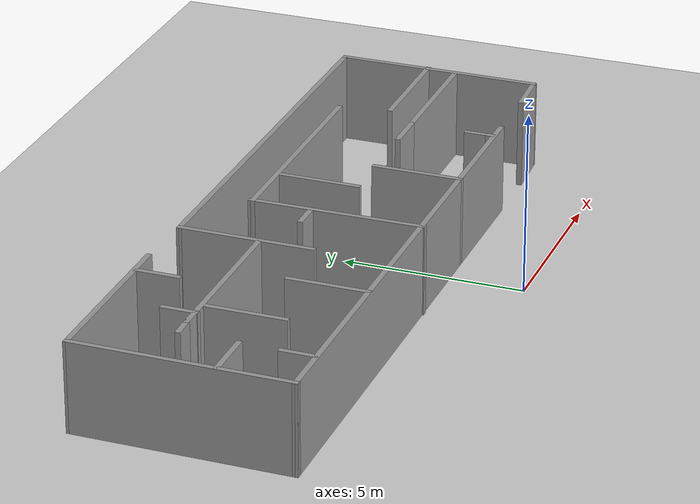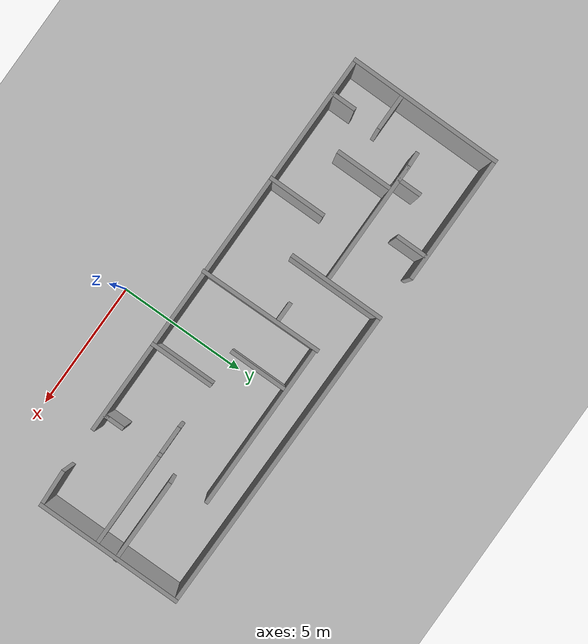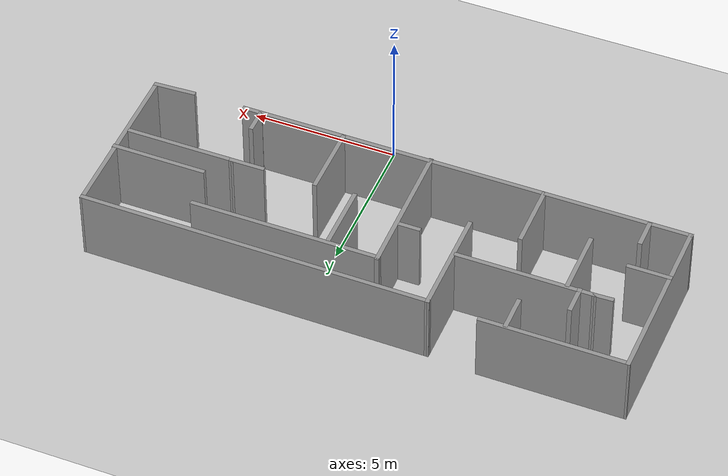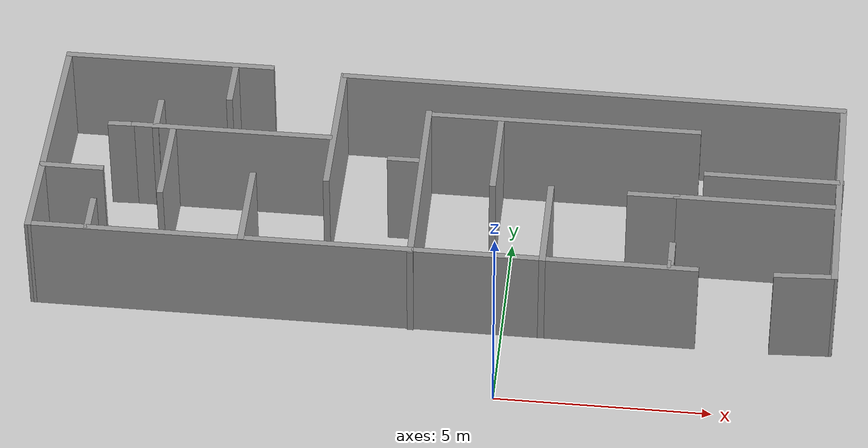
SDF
<sdf version='1.7'>
  <world name='default'>
    <light name='sun' type='directional'>
      <cast_shadows>1</cast_shadows>
      <pose>0 0 10 0 -0 0</pose>
      <diffuse>0.8 0.8 0.8 1</diffuse>
      <specular>0.2 0.2 0.2 1</specular>
      <attenuation>
        <range>1000</range>
        <constant>0.9</constant>
        <linear>0.01</linear>
        <quadratic>0.001</quadratic>
      </attenuation>
      <direction>-0.5 0.1 -0.9</direction>
      <spot>
        <inner_angle>0</inner_angle>
        <outer_angle>0</outer_angle>
        <falloff>0</falloff>
      </spot>
    </light>
    <model name='ground_plane'>
      <static>1</static>
      <link name='link'>
        <collision name='collision'>
          <geometry>
            <plane>
              <normal>0 0 1</normal>
              <size>100 100</size>
            </plane>
          </geometry>
          <surface>
            <friction>
              <ode>
                <mu>100</mu>
                <mu2>50</mu2>
              </ode>
              <torsional>
                <ode/>
              </torsional>
            </friction>
            <contact>
              <ode/>
            </contact>
            <bounce/>
          </surface>
          <max_contacts>10</max_contacts>
        </collision>
        <visual name='visual'>
          <cast_shadows>0</cast_shadows>
          <geometry>
            <plane>
              <normal>0 0 1</normal>
              <size>100 100</size>
            </plane>
          </geometry>
          <material>
            <script>
              <uri>file://media/materials/scripts/gazebo.material</uri>
              <name>Gazebo/Grey</name>
            </script>
          </material>
        </visual>
        <self_collide>0</self_collide>
        <enable_wind>0</enable_wind>
        <kinematic>0</kinematic>
      </link>
    </model>
    <gravity>0 0 -9.8</gravity>
    <magnetic_field>6e-06 2.3e-05 -4.2e-05</magnetic_field>
    <atmosphere type='adiabatic'/>
    <physics type='ode'>
      <max_step_size>0.001</max_step_size>
      <real_time_factor>1</real_time_factor>
      <real_time_update_rate>1000</real_time_update_rate>
    </physics>
    <scene>
      <ambient>0.4 0.4 0.4 1</ambient>
      <background>0.7 0.7 0.7 1</background>
      <shadows>1</shadows>
    </scene>
    <wind/>
    <spherical_coordinates>
      <surface_model>EARTH_WGS84</surface_model>
      <latitude_deg>0</latitude_deg>
      <longitude_deg>0</longitude_deg>
      <elevation>0</elevation>
      <heading_deg>0</heading_deg>
    </spherical_coordinates>
    <model name='migong'>
      <pose>-1.67735 4.0197 0 0 -0 0</pose>
      <link name='Wall_12'>
        <collision name='Wall_12_Collision'>
          <geometry>
            <box>
              <size>4.81962 0.15 2.5</size>
            </box>
          </geometry>
          <pose>0 0 1.25 0 -0 0</pose>
          <max_contacts>10</max_contacts>
          <surface>
            <contact>
              <ode/>
            </contact>
            <bounce/>
            <friction>
              <torsional>
                <ode/>
              </torsional>
              <ode/>
            </friction>
          </surface>
        </collision>
        <visual name='Wall_12_Visual'>
          <pose>0 0 1.25 0 -0 0</pose>
          <geometry>
            <box>
              <size>4.81962 0.15 2.5</size>
            </box>
          </geometry>
          <material>
            <script>
              <uri>file://media/materials/scripts/gazebo.material</uri>
              <name>Gazebo/Grey</name>
            </script>
            <ambient>1 1 1 1</ambient>
          </material>
          <meta>
            <layer>0</layer>
          </meta>
        </visual>
        <pose>-0.457971 0.404092 0 0 -0 1.5807</pose>
        <self_collide>0</self_collide>
        <enable_wind>0</enable_wind>
        <kinematic>0</kinematic>
      </link>
      <link name='Wall_13'>
        <collision name='Wall_13_Collision'>
          <geometry>
            <box>
              <size>6.5 0.15 2.5</size>
            </box>
          </geometry>
          <pose>0 0 1.25 0 -0 0</pose>
          <max_contacts>10</max_contacts>
          <surface>
            <contact>
              <ode/>
            </contact>
            <bounce/>
            <friction>
              <torsional>
                <ode/>
              </torsional>
              <ode/>
            </friction>
          </surface>
        </collision>
        <visual name='Wall_13_Visual'>
          <pose>0 0 1.25 0 -0 0</pose>
          <geometry>
            <box>
              <size>6.5 0.15 2.5</size>
            </box>
          </geometry>
          <material>
            <script>
              <uri>file://media/materials/scripts/gazebo.material</uri>
              <name>Gazebo/Grey</name>
            </script>
            <ambient>1 1 1 1</ambient>
          </material>
          <meta>
            <layer>0</layer>
          </meta>
        </visual>
        <pose>2.6939 2.69253 0 0 -0 0</pose>
        <self_collide>0</self_collide>
        <enable_wind>0</enable_wind>
        <kinematic>0</kinematic>
      </link>
      <link name='Wall_15'>
        <collision name='Wall_15_Collision'>
          <geometry>
            <box>
              <size>2.5 0.15 2.5</size>
            </box>
          </geometry>
          <pose>0 0 1.25 0 -0 0</pose>
          <max_contacts>10</max_contacts>
          <surface>
            <contact>
              <ode/>
            </contact>
            <bounce/>
            <friction>
              <torsional>
                <ode/>
              </torsional>
              <ode/>
            </friction>
          </surface>
        </collision>
        <visual name='Wall_15_Visual'>
          <pose>0 0 1.25 0 -0 0</pose>
          <geometry>
            <box>
              <size>2.5 0.15 2.5</size>
            </box>
          </geometry>
          <material>
            <script>
              <uri>file://media/materials/scripts/gazebo.material</uri>
              <name>Gazebo/Grey</name>
            </script>
            <ambient>1 1 1 1</ambient>
          </material>
          <meta>
            <layer>0</layer>
          </meta>
        </visual>
        <pose>2.59053 -0.720425 0 0 -0 1.5708</pose>
        <self_collide>0</self_collide>
        <enable_wind>0</enable_wind>
        <kinematic>0</kinematic>
      </link>
      <link name='Wall_29'>
        <collision name='Wall_29_Collision'>
          <geometry>
            <box>
              <size>5.98978 0.15 2.5</size>
            </box>
          </geometry>
          <pose>0 0 1.25 0 -0 0</pose>
          <max_contacts>10</max_contacts>
          <surface>
            <contact>
              <ode/>
            </contact>
            <bounce/>
            <friction>
              <torsional>
                <ode/>
              </torsional>
              <ode/>
            </friction>
          </surface>
        </collision>
        <visual name='Wall_29_Visual'>
          <pose>0 0 1.25 0 -0 0</pose>
          <geometry>
            <box>
              <size>5.98978 0.15 2.5</size>
            </box>
          </geometry>
          <material>
            <script>
              <uri>file://media/materials/scripts/gazebo.material</uri>
              <name>Gazebo/Grey</name>
            </script>
            <ambient>1 1 1 1</ambient>
          </material>
          <meta>
            <layer>0</layer>
          </meta>
        </visual>
        <pose>-9.24712 1.02441 0 0 -0 -1.57682</pose>
        <self_collide>0</self_collide>
        <enable_wind>0</enable_wind>
        <kinematic>0</kinematic>
      </link>
      <link name='Wall_33'>
        <collision name='Wall_33_Collision'>
          <geometry>
            <box>
              <size>3.75 0.15 2.5</size>
            </box>
          </geometry>
          <pose>0 0 1.25 0 -0 0</pose>
          <max_contacts>10</max_contacts>
          <surface>
            <contact>
              <ode/>
            </contact>
            <bounce/>
            <friction>
              <torsional>
                <ode/>
              </torsional>
              <ode/>
            </friction>
          </surface>
        </collision>
        <visual name='Wall_33_Visual'>
          <pose>0 0 1.25 0 -0 0</pose>
          <geometry>
            <box>
              <size>3.75 0.15 2.5</size>
            </box>
          </geometry>
          <material>
            <script>
              <uri>file://media/materials/scripts/gazebo.material</uri>
              <name>Gazebo/Grey</name>
            </script>
            <ambient>1 1 1 1</ambient>
          </material>
          <meta>
            <layer>0</layer>
          </meta>
        </visual>
        <pose>-2.61592 2.03871 0 0 -0 -1.5708</pose>
        <self_collide>0</self_collide>
        <enable_wind>0</enable_wind>
        <kinematic>0</kinematic>
      </link>
      <link name='Wall_35'>
        <collision name='Wall_35_Collision'>
          <geometry>
            <box>
              <size>4.75 0.15 2.5</size>
            </box>
          </geometry>
          <pose>0 0 1.25 0 -0 0</pose>
          <max_contacts>10</max_contacts>
          <surface>
            <contact>
              <ode/>
            </contact>
            <bounce/>
            <friction>
              <torsional>
                <ode/>
              </torsional>
              <ode/>
            </friction>
          </surface>
        </collision>
        <visual name='Wall_35_Visual'>
          <pose>0 0 1.25 0 -0 0</pose>
          <geometry>
            <box>
              <size>4.75 0.15 2.5</size>
            </box>
          </geometry>
          <material>
            <script>
              <uri>file://media/materials/scripts/gazebo.material</uri>
              <name>Gazebo/Grey</name>
            </script>
            <ambient>1 1 1 1</ambient>
          </material>
          <meta>
            <layer>0</layer>
          </meta>
        </visual>
        <pose>-5.02146 1.65763 0 0 -0 3.14159</pose>
        <self_collide>0</self_collide>
        <enable_wind>0</enable_wind>
        <kinematic>0</kinematic>
      </link>
      <link name='Wall_38'>
        <collision name='Wall_38_Collision'>
          <geometry>
            <box>
              <size>2.25 0.15 2.5</size>
            </box>
          </geometry>
          <pose>0 0 1.25 0 -0 0</pose>
          <max_contacts>10</max_contacts>
          <surface>
            <contact>
              <ode/>
            </contact>
            <bounce/>
            <friction>
              <torsional>
                <ode/>
              </torsional>
              <ode/>
            </friction>
          </surface>
        </collision>
        <visual name='Wall_38_Visual'>
          <pose>0 0 1.25 0 -0 0</pose>
          <geometry>
            <box>
              <size>2.25 0.15 2.5</size>
            </box>
          </geometry>
          <material>
            <script>
              <uri>file://media/materials/scripts/gazebo.material</uri>
              <name>Gazebo/Grey</name>
            </script>
            <ambient>1 1 1 1</ambient>
          </material>
          <meta>
            <layer>0</layer>
          </meta>
        </visual>
        <pose>-4.33968 -0.8347 0 0 -0 -1.5708</pose>
        <self_collide>0</self_collide>
        <enable_wind>0</enable_wind>
        <kinematic>0</kinematic>
      </link>
      <link name='Wall_40'>
        <collision name='Wall_40_Collision'>
          <geometry>
            <box>
              <size>5.75 0.15 2.5</size>
            </box>
          </geometry>
          <pose>0 0 1.25 0 -0 0</pose>
          <max_contacts>10</max_contacts>
          <surface>
            <contact>
              <ode/>
            </contact>
            <bounce/>
            <friction>
              <torsional>
                <ode/>
              </torsional>
              <ode/>
            </friction>
          </surface>
        </collision>
        <visual name='Wall_40_Visual'>
          <pose>0 0 1.25 0 -0 0</pose>
          <geometry>
            <box>
              <size>5.75 0.15 2.5</size>
            </box>
          </geometry>
          <material>
            <script>
              <uri>file://media/materials/scripts/gazebo.material</uri>
              <name>Gazebo/Grey</name>
            </script>
            <ambient>1 1 1 1</ambient>
          </material>
          <meta>
            <layer>0</layer>
          </meta>
        </visual>
        <pose>9.23932 0.968356 0 0 -0 -1.5708</pose>
        <self_collide>0</self_collide>
        <enable_wind>0</enable_wind>
        <kinematic>0</kinematic>
      </link>
      <link name='Wall_42'>
        <collision name='Wall_42_Collision'>
          <geometry>
            <box>
              <size>5 0.15 2.5</size>
            </box>
          </geometry>
          <pose>0 0 1.25 0 -0 0</pose>
          <max_contacts>10</max_contacts>
          <surface>
            <contact>
              <ode/>
            </contact>
            <bounce/>
            <friction>
              <torsional>
                <ode/>
              </torsional>
              <ode/>
            </friction>
          </surface>
        </collision>
        <visual name='Wall_42_Visual'>
          <pose>0 0 1.25 0 -0 0</pose>
          <geometry>
            <box>
              <size>5 0.15 2.5</size>
            </box>
          </geometry>
          <material>
            <script>
              <uri>file://media/materials/scripts/gazebo.material</uri>
              <name>Gazebo/Grey</name>
            </script>
            <ambient>1 1 1 1</ambient>
          </material>
          <meta>
            <layer>0</layer>
          </meta>
        </visual>
        <pose>-6.80453 3.94425 0 0 -0 0</pose>
        <self_collide>0</self_collide>
        <enable_wind>0</enable_wind>
        <kinematic>0</kinematic>
      </link>
      <link name='Wall_44'>
        <collision name='Wall_44_Collision'>
          <geometry>
            <box>
              <size>12.0055 0.15 2.5</size>
            </box>
          </geometry>
          <pose>0 0 1.25 0 -0 0</pose>
          <max_contacts>10</max_contacts>
          <surface>
            <contact>
              <ode/>
            </contact>
            <bounce/>
            <friction>
              <torsional>
                <ode/>
              </torsional>
              <ode/>
            </friction>
          </surface>
        </collision>
        <visual name='Wall_44_Visual'>
          <pose>0 0 1.25 0 -0 0</pose>
          <geometry>
            <box>
              <size>12.0055 0.15 2.5</size>
            </box>
          </geometry>
          <material>
            <script>
              <uri>file://media/materials/scripts/gazebo.material</uri>
              <name>Gazebo/Grey</name>
            </script>
            <ambient>1 1 1 1</ambient>
          </material>
          <meta>
            <layer>0</layer>
          </meta>
        </visual>
        <pose>3.3117 3.80354 0 0 -0 -0.005935</pose>
        <self_collide>0</self_collide>
        <enable_wind>0</enable_wind>
        <kinematic>0</kinematic>
      </link>
      <link name='Wall_46'>
        <collision name='Wall_46_Collision'>
          <geometry>
            <box>
              <size>3.75 0.15 2.5</size>
            </box>
          </geometry>
          <pose>0 0 1.25 0 -0 0</pose>
          <max_contacts>10</max_contacts>
          <surface>
            <contact>
              <ode/>
            </contact>
            <bounce/>
            <friction>
              <torsional>
                <ode/>
              </torsional>
              <ode/>
            </friction>
          </surface>
        </collision>
        <visual name='Wall_46_Visual'>
          <pose>0 0 1.25 0 -0 0</pose>
          <geometry>
            <box>
              <size>3.75 0.15 2.5</size>
            </box>
          </geometry>
          <material>
            <script>
              <uri>file://media/materials/scripts/gazebo.material</uri>
              <name>Gazebo/Grey</name>
            </script>
            <ambient>1 1 1 1</ambient>
          </material>
          <meta>
            <layer>0</layer>
          </meta>
        </visual>
        <pose>7.31037 0.461552 0 0 -0 0</pose>
        <self_collide>0</self_collide>
        <enable_wind>0</enable_wind>
        <kinematic>0</kinematic>
      </link>
      <link name='Wall_53'>
        <collision name='Wall_53_Collision'>
          <geometry>
            <box>
              <size>1.21986 0.15 2.5</size>
            </box>
          </geometry>
          <pose>0 0 1.25 0 -0 0</pose>
          <max_contacts>10</max_contacts>
          <surface>
            <contact>
              <ode/>
            </contact>
            <bounce/>
            <friction>
              <torsional>
                <ode/>
              </torsional>
              <ode/>
            </friction>
          </surface>
        </collision>
        <visual name='Wall_53_Visual'>
          <pose>0 0 1.25 0 -0 0</pose>
          <geometry>
            <box>
              <size>1.21986 0.15 2.5</size>
            </box>
          </geometry>
          <material>
            <script>
              <uri>file://media/materials/scripts/gazebo.material</uri>
              <name>Gazebo/Grey</name>
            </script>
            <ambient>1 1 1 1</ambient>
          </material>
          <meta>
            <layer>0</layer>
          </meta>
        </visual>
        <pose>4.97545 0.458063 0 0 -0 0.006522</pose>
        <self_collide>0</self_collide>
        <enable_wind>0</enable_wind>
        <kinematic>0</kinematic>
      </link>
      <link name='Wall_56'>
        <collision name='Wall_56_Collision'>
          <geometry>
            <box>
              <size>1.45559 0.15 2.5</size>
            </box>
          </geometry>
          <pose>0 0 1.25 0 -0 0</pose>
          <max_contacts>10</max_contacts>
          <surface>
            <contact>
              <ode/>
            </contact>
            <bounce/>
            <friction>
              <torsional>
                <ode/>
              </torsional>
              <ode/>
            </friction>
          </surface>
        </collision>
        <visual name='Wall_56_Visual'>
          <pose>0 0 1.25 0 -0 0</pose>
          <geometry>
            <box>
              <size>1.45559 0.15 2.5</size>
            </box>
          </geometry>
          <material>
            <script>
              <uri>file://media/materials/scripts/gazebo.material</uri>
              <name>Gazebo/Grey</name>
            </script>
            <ambient>1 1 1 1</ambient>
          </material>
          <meta>
            <layer>0</layer>
          </meta>
        </visual>
        <pose>8.58731 -1.86353 0 0 -0 0.048872</pose>
        <self_collide>0</self_collide>
        <enable_wind>0</enable_wind>
        <kinematic>0</kinematic>
      </link>
      <link name='Wall_59'>
        <collision name='Wall_59_Collision'>
          <geometry>
            <box>
              <size>0.75 0.15 2.5</size>
            </box>
          </geometry>
          <pose>0 0 1.25 0 -0 0</pose>
          <max_contacts>10</max_contacts>
          <surface>
            <contact>
              <ode/>
            </contact>
            <bounce/>
            <friction>
              <torsional>
                <ode/>
              </torsional>
              <ode/>
            </friction>
          </surface>
        </collision>
        <visual name='Wall_59_Visual'>
          <pose>0 0 1.25 0 -0 0</pose>
          <geometry>
            <box>
              <size>0.75 0.15 2.5</size>
            </box>
          </geometry>
          <material>
            <script>
              <uri>file://media/materials/scripts/gazebo.material</uri>
              <name>Gazebo/Grey</name>
            </script>
            <ambient>1 1 1 1</ambient>
          </material>
          <meta>
            <layer>0</layer>
          </meta>
        </visual>
        <pose>5.51037 -1.43845 0 0 -0 -1.5708</pose>
        <self_collide>0</self_collide>
        <enable_wind>0</enable_wind>
        <kinematic>0</kinematic>
      </link>
      <link name='Wall_60'>
        <collision name='Wall_60_Collision'>
          <geometry>
            <box>
              <size>0.25 0.15 2.5</size>
            </box>
          </geometry>
          <pose>0 0 1.25 0 -0 0</pose>
          <max_contacts>10</max_contacts>
          <surface>
            <contact>
              <ode/>
            </contact>
            <bounce/>
            <friction>
              <torsional>
                <ode/>
              </torsional>
              <ode/>
            </friction>
          </surface>
        </collision>
        <visual name='Wall_60_Visual'>
          <pose>0 0 1.25 0 -0 0</pose>
          <geometry>
            <box>
              <size>0.25 0.15 2.5</size>
            </box>
          </geometry>
          <material>
            <script>
              <uri>file://media/materials/scripts/gazebo.material</uri>
              <name>Gazebo/Grey</name>
            </script>
            <ambient>1 1 1 1</ambient>
          </material>
          <meta>
            <layer>0</layer>
          </meta>
        </visual>
        <pose>5.51037 -1.78845 0 0 -0 -1.5708</pose>
        <self_collide>0</self_collide>
        <enable_wind>0</enable_wind>
        <kinematic>0</kinematic>
      </link>
      <link name='Wall_68'>
        <collision name='Wall_68_Collision'>
          <geometry>
            <box>
              <size>2.25 0.15 2.5</size>
            </box>
          </geometry>
          <pose>0 0 1.25 0 -0 0</pose>
          <max_contacts>10</max_contacts>
          <surface>
            <contact>
              <ode/>
            </contact>
            <bounce/>
            <friction>
              <torsional>
                <ode/>
              </torsional>
              <ode/>
            </friction>
          </surface>
        </collision>
        <visual name='Wall_68_Visual'>
          <pose>0 0 1.25 0 -0 0</pose>
          <geometry>
            <box>
              <size>2.25 0.15 2.5</size>
            </box>
          </geometry>
          <material>
            <script>
              <uri>file://media/materials/scripts/gazebo.material</uri>
              <name>Gazebo/Grey</name>
            </script>
            <ambient>1 1 1 1</ambient>
          </material>
          <meta>
            <layer>0</layer>
          </meta>
        </visual>
        <pose>1.24053 1.50457 0 0 -0 1.5708</pose>
        <self_collide>0</self_collide>
        <enable_wind>0</enable_wind>
        <kinematic>0</kinematic>
      </link>
      <link name='Wall_71'>
        <collision name='Wall_71_Collision'>
          <geometry>
            <box>
              <size>0.75 0.15 2.5</size>
            </box>
          </geometry>
          <pose>0 0 1.25 0 -0 0</pose>
          <max_contacts>10</max_contacts>
          <surface>
            <contact>
              <ode/>
            </contact>
            <bounce/>
            <friction>
              <torsional>
                <ode/>
              </torsional>
              <ode/>
            </friction>
          </surface>
        </collision>
        <visual name='Wall_71_Visual'>
          <pose>0 0 1.25 0 -0 0</pose>
          <geometry>
            <box>
              <size>0.75 0.15 2.5</size>
            </box>
          </geometry>
          <material>
            <script>
              <uri>file://media/materials/scripts/gazebo.material</uri>
              <name>Gazebo/Grey</name>
            </script>
            <ambient>1 1 1 1</ambient>
          </material>
          <meta>
            <layer>0</layer>
          </meta>
        </visual>
        <pose>-0.908848 1.08381 0 0 -0 0</pose>
        <self_collide>0</self_collide>
        <enable_wind>0</enable_wind>
        <kinematic>0</kinematic>
      </link>
      <link name='Wall_75'>
        <collision name='Wall_75_Collision'>
          <geometry>
            <box>
              <size>2.25 0.15 2.5</size>
            </box>
          </geometry>
          <pose>0 0 1.25 0 -0 0</pose>
          <max_contacts>10</max_contacts>
          <surface>
            <contact>
              <ode/>
            </contact>
            <bounce/>
            <friction>
              <torsional>
                <ode/>
              </torsional>
              <ode/>
            </friction>
          </surface>
        </collision>
        <visual name='Wall_75_Visual'>
          <pose>0 0 1.25 0 -0 0</pose>
          <geometry>
            <box>
              <size>2.25 0.15 2.5</size>
            </box>
          </geometry>
          <material>
            <script>
              <uri>file://media/materials/scripts/gazebo.material</uri>
              <name>Gazebo/Grey</name>
            </script>
            <ambient>1 1 1 1</ambient>
          </material>
          <meta>
            <layer>0</layer>
          </meta>
        </visual>
        <pose>-6.39853 0.523096 0 0 -0 1.5708</pose>
        <self_collide>0</self_collide>
        <enable_wind>0</enable_wind>
        <kinematic>0</kinematic>
      </link>
      <link name='Wall_78'>
        <collision name='Wall_78_Collision'>
          <geometry>
            <box>
              <size>0.69932 0.15 2.5</size>
            </box>
          </geometry>
          <pose>0 0 1.25 0 -0 0</pose>
          <max_contacts>10</max_contacts>
          <surface>
            <contact>
              <ode/>
            </contact>
            <bounce/>
            <friction>
              <torsional>
                <ode/>
              </torsional>
              <ode/>
            </friction>
          </surface>
        </collision>
        <visual name='Wall_78_Visual'>
          <pose>0 0 1.25 0 -0 0</pose>
          <geometry>
            <box>
              <size>0.69932 0.15 2.5</size>
            </box>
          </geometry>
          <material>
            <script>
              <uri>file://media/materials/scripts/gazebo.material</uri>
              <name>Gazebo/Grey</name>
            </script>
            <ambient>1 1 1 1</ambient>
          </material>
          <meta>
            <layer>0</layer>
          </meta>
        </visual>
        <pose>-7.59596 1.64829 0 0 -0 0.034016</pose>
        <self_collide>0</self_collide>
        <enable_wind>0</enable_wind>
        <kinematic>0</kinematic>
      </link>
      <link name='Wall_8'>
        <collision name='Wall_8_Collision'>
          <geometry>
            <box>
              <size>15.5 0.15 2.5</size>
            </box>
          </geometry>
          <pose>0 0 1.25 0 -0 0</pose>
          <max_contacts>10</max_contacts>
          <surface>
            <contact>
              <ode/>
            </contact>
            <bounce/>
            <friction>
              <torsional>
                <ode/>
              </torsional>
              <ode/>
            </friction>
          </surface>
        </collision>
        <visual name='Wall_8_Visual'>
          <pose>0 0 1.25 0 -0 0</pose>
          <geometry>
            <box>
              <size>15.5 0.15 2.5</size>
            </box>
          </geometry>
          <material>
            <script>
              <uri>file://media/materials/scripts/gazebo.material</uri>
              <name>Gazebo/Grey</name>
            </script>
            <ambient>1 1 1 1</ambient>
          </material>
          <meta>
            <layer>0</layer>
          </meta>
        </visual>
        <pose>-1.58971 -1.89542 0 0 -0 0</pose>
        <self_collide>0</self_collide>
        <enable_wind>0</enable_wind>
        <kinematic>0</kinematic>
      </link>
      <link name='Wall_80'>
        <collision name='Wall_80_Collision'>
          <geometry>
            <box>
              <size>1.5 0.15 2.5</size>
            </box>
          </geometry>
          <pose>0 0 1.25 0 -0 0</pose>
          <max_contacts>10</max_contacts>
          <surface>
            <contact>
              <ode/>
            </contact>
            <bounce/>
            <friction>
              <torsional>
                <ode/>
              </torsional>
              <ode/>
            </friction>
          </surface>
        </collision>
        <visual name='Wall_80_Visual'>
          <pose>0 0 1.25 0 -0 0</pose>
          <geometry>
            <box>
              <size>1.5 0.15 2.5</size>
            </box>
          </geometry>
          <material>
            <script>
              <uri>file://media/materials/scripts/gazebo.material</uri>
              <name>Gazebo/Grey</name>
            </script>
            <ambient>1 1 1 1</ambient>
          </material>
          <meta>
            <layer>0</layer>
          </meta>
        </visual>
        <pose>-8.56859 0.089197 0 0 -0 0</pose>
        <self_collide>0</self_collide>
        <enable_wind>0</enable_wind>
        <kinematic>0</kinematic>
      </link>
      <link name='Wall_85'>
        <collision name='Wall_85_Collision'>
          <geometry>
            <box>
              <size>1 0.15 2.5</size>
            </box>
          </geometry>
          <pose>0 0 1.25 0 -0 0</pose>
          <max_contacts>10</max_contacts>
          <surface>
            <contact>
              <ode/>
            </contact>
            <bounce/>
            <friction>
              <torsional>
                <ode/>
              </torsional>
              <ode/>
            </friction>
          </surface>
        </collision>
        <visual name='Wall_85_Visual'>
          <pose>0 0 1.25 0 -0 0</pose>
          <geometry>
            <box>
              <size>1 0.15 2.5</size>
            </box>
          </geometry>
          <material>
            <script>
              <uri>file://media/materials/scripts/gazebo.material</uri>
              <name>Gazebo/Grey</name>
            </script>
            <ambient>1 1 1 1</ambient>
          </material>
          <meta>
            <layer>0</layer>
          </meta>
        </visual>
        <pose>-7.89359 -1.4358 0 0 -0 -1.5708</pose>
        <self_collide>0</self_collide>
        <enable_wind>0</enable_wind>
        <kinematic>0</kinematic>
      </link>
      <link name='Wall_88'>
        <collision name='Wall_88_Collision'>
          <geometry>
            <box>
              <size>1 0.15 2.5</size>
            </box>
          </geometry>
          <pose>0 0 1.25 0 -0 0</pose>
          <max_contacts>10</max_contacts>
          <surface>
            <contact>
              <ode/>
            </contact>
            <bounce/>
            <friction>
              <torsional>
                <ode/>
              </torsional>
              <ode/>
            </friction>
          </surface>
        </collision>
        <visual name='Wall_88_Visual'>
          <pose>0 0 1.25 0 -0 0</pose>
          <geometry>
            <box>
              <size>1 0.15 2.5</size>
            </box>
          </geometry>
          <material>
            <script>
              <uri>file://media/materials/scripts/gazebo.material</uri>
              <name>Gazebo/Grey</name>
            </script>
            <ambient>1 1 1 1</ambient>
          </material>
          <meta>
            <layer>0</layer>
          </meta>
        </visual>
        <pose>-6.81488 2.06136 0 0 -0 -1.5708</pose>
        <self_collide>0</self_collide>
        <enable_wind>0</enable_wind>
        <kinematic>0</kinematic>
      </link>
      <link name='Wall_93'>
        <collision name='Wall_93_Collision'>
          <geometry>
            <box>
              <size>1.25 0.15 2.5</size>
            </box>
          </geometry>
          <pose>0 0 1.25 0 -0 0</pose>
          <max_contacts>10</max_contacts>
          <surface>
            <contact>
              <ode/>
            </contact>
            <bounce/>
            <friction>
              <torsional>
                <ode/>
              </torsional>
              <ode/>
            </friction>
          </surface>
        </collision>
        <visual name='Wall_93_Visual'>
          <pose>0 0 1.25 0 -0 0</pose>
          <geometry>
            <box>
              <size>1.25 0.15 2.5</size>
            </box>
          </geometry>
          <material>
            <script>
              <uri>file://media/materials/scripts/gazebo.material</uri>
              <name>Gazebo/Grey</name>
            </script>
            <ambient>1 1 1 1</ambient>
          </material>
          <meta>
            <layer>0</layer>
          </meta>
        </visual>
        <pose>-5.21887 3.33521 0 0 -0 1.5708</pose>
        <self_collide>0</self_collide>
        <enable_wind>0</enable_wind>
        <kinematic>0</kinematic>
      </link>
      <link name='Wall_97'>
        <collision name='Wall_97_Collision'>
          <geometry>
            <box>
              <size>3.25 0.15 2.5</size>
            </box>
          </geometry>
          <pose>0 0 1.25 0 -0 0</pose>
          <max_contacts>10</max_contacts>
          <surface>
            <contact>
              <ode/>
            </contact>
            <bounce/>
            <friction>
              <torsional>
                <ode/>
              </torsional>
              <ode/>
            </friction>
          </surface>
        </collision>
        <visual name='Wall_97_Visual'>
          <pose>0 0 1.25 0 -0 0</pose>
          <geometry>
            <box>
              <size>3.25 0.15 2.5</size>
            </box>
          </geometry>
          <material>
            <script>
              <uri>file://media/materials/scripts/gazebo.material</uri>
              <name>Gazebo/Grey</name>
            </script>
            <ambient>1 1 1 1</ambient>
          </material>
          <meta>
            <layer>0</layer>
          </meta>
        </visual>
        <pose>7.71516 1.29627 0 0 -0 0</pose>
        <self_collide>0</self_collide>
        <enable_wind>0</enable_wind>
        <kinematic>0</kinematic>
      </link>
      <static>1</static>
    </model>
    <gui fullscreen='0'>
      <camera name='user_camera'>
        <pose>-9.87835 -2.18281 64.1496 0 1.4058 0.16101</pose>
        <view_controller>orbit</view_controller>
        <projection_type>perspective</projection_type>
      </camera>
    </gui>
  </world>
</sdf>
